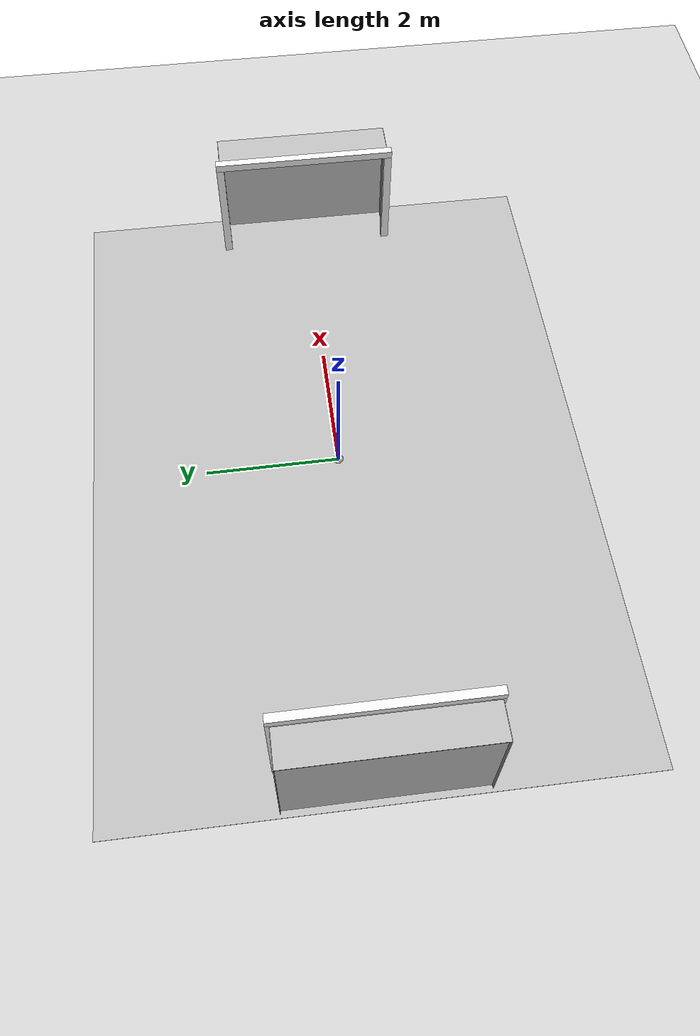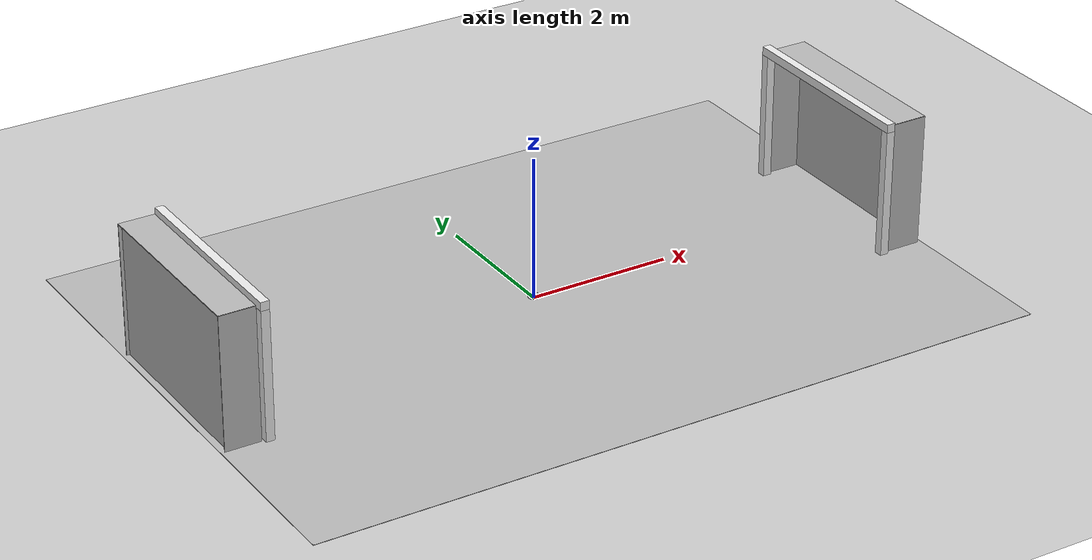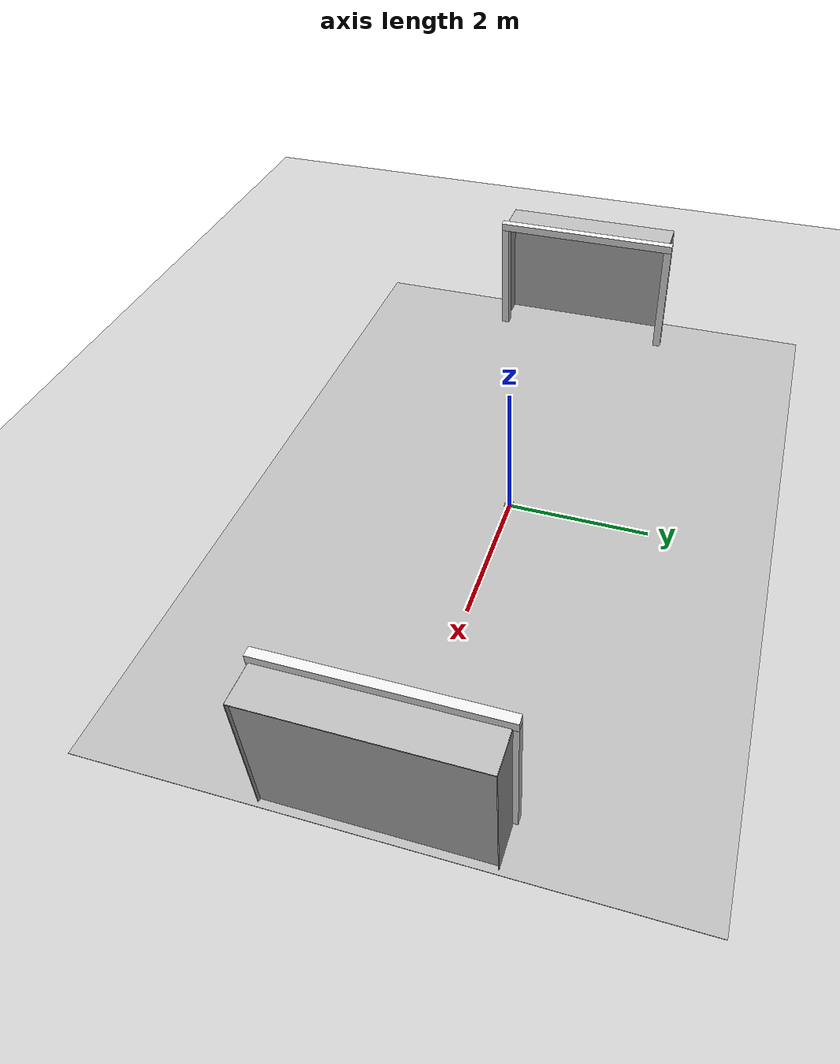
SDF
<?xml version="1.0"?>
<sdf version='1.5'>
  <world name='RoboCup2019Field'>
<!-- scene -->
    <scene>
      <ambient>0.4 0.4 0.4 1</ambient>
      <background>0.7 0.7 0.7 1</background>
      <shadows>0</shadows>
    </scene>

<!-- lighting -->
 <light type="directional" name="sun">
    <cast_shadows>0</cast_shadows>

    <pose>0 0 10 0 0 0</pose>
    <diffuse>0.8 0.8 0.8 1</diffuse>
    <specular>0.2 0.2 0.2 1</specular>

    <attenuation>
      <range>1000</range>
      <constant>0.9</constant>
      <linear>0.01</linear>
      <quadratic>0.001</quadratic>
    </attenuation>

    <direction>-0.5 0.1 -0.9</direction>
  </light>

<!-- physics -->

    <include>
        <uri>model://ground_plane</uri>
    </include>

    <include>
        <pose>0 0 0 0 0 0</pose>
        <uri>model://RoboCup2019_Field</uri>
        <name>field</name>
        <static>true</static>
    </include>

    <include>
        <pose>-4.5 0 0.01 0 0 0 </pose>
        <uri>model://RoboCup2019_Goal</uri>
        <name>left_goal</name>
        <static>true</static>
    </include>

   <include>
        <pose>4.5 0 0.01 0 0 3.14 </pose>
        <uri>model://RoboCup2019_Goal</uri>
        <name>right_goal</name>
        <static>true</static>
    </include>

    <include>
        <pose>0 0 0 0 0 0</pose>
        <uri>model://ball</uri>
        <name>ball</name>
        <static>false</static>
    </include>

  </world>
</sdf>

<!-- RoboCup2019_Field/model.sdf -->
<sdf version="1.4">
  <model name="RoboCup2019_Field">
    <static>true</static>

    <link name="chassis">
      <pose>0 0 0.01 0 0 0</pose>
      <collision name="collision">
        <geometry>
          <plane>
            <normal>0 0 1</normal>
            <size>10.4 7.4</size>
          </plane>
        </geometry>
        <surface>
          <friction>
            <ode>
              <mu>100</mu>
              <mu2>50</mu2>
            </ode>
          </friction>
        </surface>
      </collision>

      <visual name="carpet">
        <cast_shadows>false</cast_shadows>
        <geometry>
          <plane>
            <normal>0 0 1</normal>
            <size>10.4 7.4</size>
          </plane>
        </geometry>
        <material>
          <script>
            <uri>file://materials/scripts/</uri>
            <uri>file://materials/textures/</uri>
            <name>RoboCup/Field</name>
          </script>
        </material>
      </visual>
    </link>
  </model>
</sdf>

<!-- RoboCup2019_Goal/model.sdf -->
<sdf version="1.4">
  <model name="RoboCup2019_Goal">
    <static>true</static>

    <link name="left_post">
      <pose>-0.06 1.36 0.9 0 0 0</pose>
      <collision name="collision">
        <geometry>
          <box><size>0.12 0.12 1.8</size></box>
        </geometry>
      </collision>
      <visual name="visual">
        <geometry>
          <box><size>0.12 0.12 1.8</size></box>
        </geometry>
        <material>
          <script>
            <uri>file://media/materials/scripts/gazebo.material</uri>
            <name>Gazebo/White</name>
          </script>
        </material>
      </visual>
    </link>

    <link name="right_post">
      <pose>-0.06 -1.36 0.9 0 0 0</pose>
      <collision name="collision">
        <geometry>
          <box><size>0.12 0.12 1.8</size></box>
        </geometry>
      </collision>
      <visual name="visual">
        <geometry>
          <box><size>0.12 0.12 1.8</size></box>
        </geometry>
        <material>
          <script>
            <uri>file://media/materials/scripts/gazebo.material</uri>
            <name>Gazebo/White</name>
          </script>
        </material>
      </visual>
    </link>

    <link name="crossbar">
      <pose>-0.06 0 1.86 0 0 0</pose>
      <collision name="collision">
        <geometry>
          <box><size>0.12 2.84 0.12</size></box>
        </geometry>
      </collision>
      <visual name="visual">
        <geometry>
          <box><size>0.12 2.84 0.12</size></box>
        </geometry>
        <material>
          <script>
            <uri>file://media/materials/scripts/gazebo.material</uri>
            <name>Gazebo/White</name>
          </script>
        </material>
      </visual>
    </link>

    <link name="center_net">
      <pose>-0.6 0 0.93 0 0 0</pose>
      <collision name="collision">
        <geometry>
          <box><size>0.01 2.72 1.86</size></box>
        </geometry>
      </collision>
      <visual name="visual">
        <geometry>
          <box><size>0.01 2.72 1.86</size></box>
        </geometry>
        <material>
          <script>
            <uri>file://materials/scripts/</uri>
            <uri>file://materials/textures/</uri>
            <name>RoboCup/Net</name>
          </script>
        </material>
      </visual>
    </link>

    <link name='upper_net'>
      <pose>-0.4 0 1.86 0 0 0</pose>
      <collision name='collision'>
        <geometry>
          <box><size>0.5 2.72 0.01</size></box>
        </geometry>
        <max_contacts>10</max_contacts>
      </collision>
      <visual name='visual'>
        <geometry>
          <box><size>0.5 2.72 0.01</size></box>
        </geometry>
        <material>
          <script>
            <uri>file://materials/scripts/</uri>
            <uri>file://materials/textures/</uri>
            <name>RoboCup/Net</name>
          </script>
        </material>
      </visual>
    </link>

    <link name="left_net">
      <pose>-0.4 1.36 0.93 0 0 0</pose>
      <collision name="collision">
        <geometry>
          <box>
            <size>0.5 0.01 1.86</size>
          </box>
        </geometry>
      </collision>
      <visual name="visual">
        <geometry>
          <box>
            <size>0.5 0.01 1.86</size>
          </box>
        </geometry>
        <material>
          <script>
            <uri>file://materials/scripts/</uri>
            <uri>file://materials/textures/</uri>
            <name>RoboCup/Net</name>
          </script>
        </material>
      </visual>
    </link>

    <link name="right_net">
      <pose>-0.4 -1.36 0.93 0 0 0</pose>
      <collision name="collision">
        <geometry>
          <box>
            <size>0.5 0.01 1.86</size>
          </box>
        </geometry>
      </collision>
      <visual name="visual">
        <geometry>
          <box>
            <size>0.5 0.01 1.86</size>
          </box>
        </geometry>
        <material>
          <script>
            <uri>file://materials/scripts/</uri>
            <uri>file://materials/textures/</uri>
            <name>RoboCup/Net</name>
          </script>
        </material>
      </visual>
    </link>

  </model>
</sdf>

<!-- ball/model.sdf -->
<sdf version="1.4">
   <!-- mass 0.41  -->
   <!-- inertia 3.2e-03 -->
   <model name="ball">
      <static>0</static>
      <pose>0 0 0 0 -0 0</pose>
      <link name="chassis">
         <self_collide>0</self_collide>
         <inertial>
            <mass>0.3</mass>
            <inertia>
               <ixx>3.2e-03</ixx>
               <iyy>3.2e-03</iyy>
               <izz>3.2e-03</izz>
               <ixy>0</ixy>
               <ixz>0</ixz>
               <iyz>0</iyz>
            </inertia>
         </inertial>
         <collision name="collision">
            <geometry>
               <sphere>
                  <radius>0.08</radius>
               </sphere>
            </geometry>
            <surface>
               <bounce>
                  <restitution_coefficient>0.05</restitution_coefficient>
                  <threshold>10</threshold>
               </bounce>
               <friction>
                  <torsional>
                     <coefficient>10.0</coefficient>
                     <use_patch_radius>true</use_patch_radius>
                     <patch_radius>0.05</patch_radius>
                  </torsional>
                  <ode>
                     <mu>1</mu>
                     <mu2>1</mu2>
                  </ode>
               </friction>
               <contact>
                  <ode>
                     <max_vel>5</max_vel>
                  </ode>
               </contact>
            </surface>
         </collision>
         <visual name="visual">
            <geometry>
               <sphere>
                  <radius>0.08</radius>
               </sphere>
            </geometry>
         </visual>
         <sensor name="contact" type="contact">
            <plugin name="contact" filename="libgazebo_ros_bumper.so">
               <robotNamespace>ball</robotNamespace>
               <frameName>world</frameName>
            </plugin>
            <contact>
               <collision>collision</collision>
            </contact>
         </sensor>
         <velocity_decay>
          <angular>0.001</angular>
         </velocity_decay>
      </link>
      <plugin name="ball_gazebo" filename="libball_gazebo.so" />
   </model>
</sdf>
